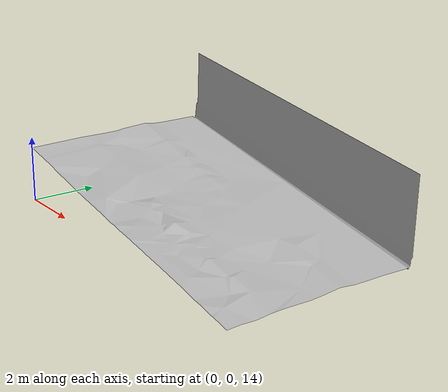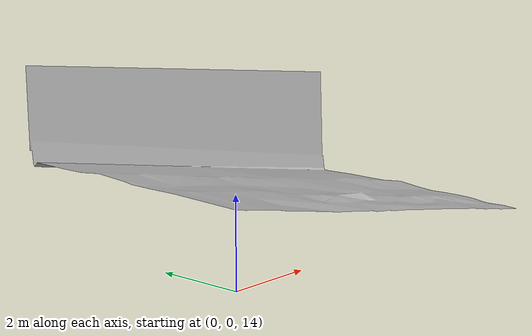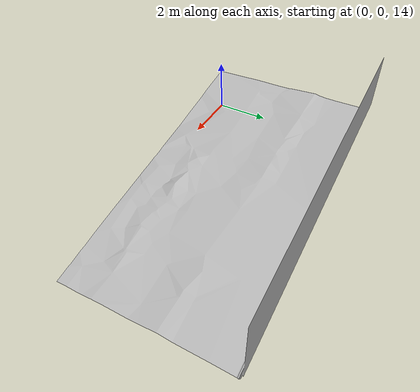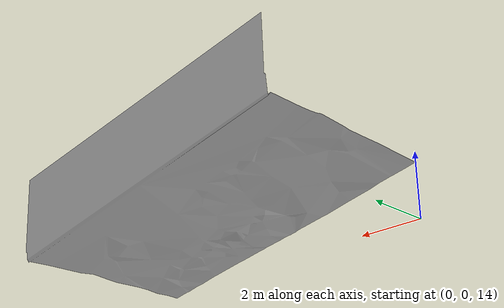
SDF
<?xml version="1.0" ?>
<sdf version="1.10">
    <model name="map_270_40">
        <link name="map_270_40_link">
            <visual name="map_270_40_visual">
                <geometry>
                    <mesh>
                        <uri>meshes/visual/map_270_40.obj</uri>
                    </mesh>
                </geometry>
            </visual>
            <collision name="map_270_40_collision">
                <surface>
                    <friction>
                        <ode>
                            <mu>2.316343837943928</mu>
                            <mu2>2.316343837943928</mu2>
                        </ode>
                        <bullet>
                            <friction>2.316343837943928</friction>
                            <friction2>2.316343837943928</friction2>
                        </bullet>
                    </friction>
                </surface>
                <geometry>
                    <mesh>
                        <uri>meshes/visual/map_270_40.obj</uri>
                    </mesh>
                </geometry>
            </collision>
        </link>
        <static>True</static>
    </model>
</sdf>
